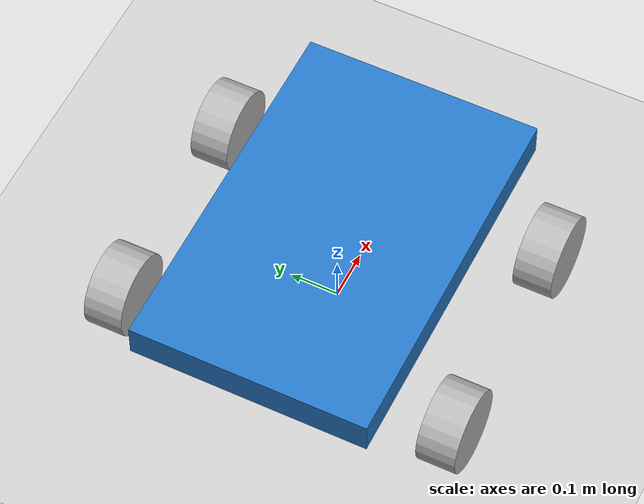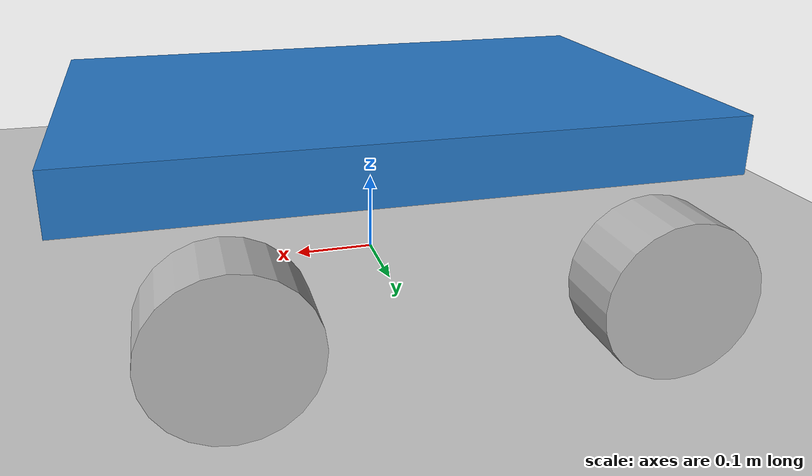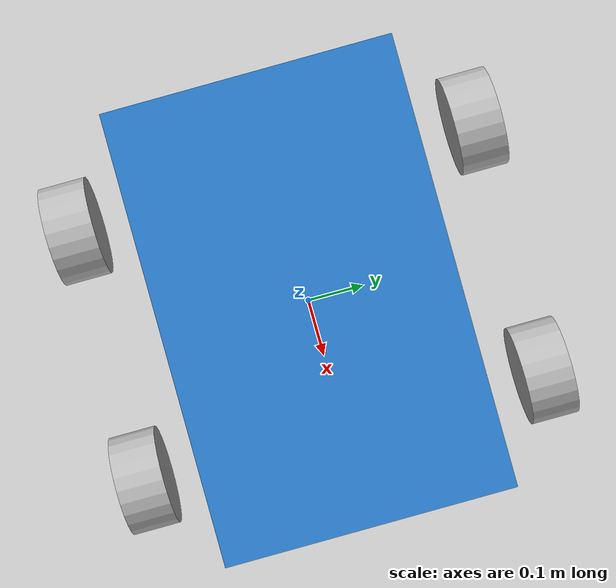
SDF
<?xml version="1.0" ?>
<sdf version="1.10">
  <world name="chassis_strength_bench">
    <physics name="deterministic_1ms" type="ignored">
      <max_step_size>0.001</max_step_size>
      <real_time_factor>1.0</real_time_factor>
    </physics>
    <gravity>0 0 -9.80665</gravity>

    <plugin filename="gz-sim-physics-system" name="gz::sim::systems::Physics"/>
    <plugin filename="gz-sim-user-commands-system" name="gz::sim::systems::UserCommands"/>
    <plugin filename="gz-sim-scene-broadcaster-system" name="gz::sim::systems::SceneBroadcaster"/>
    <plugin filename="gz-sim-forcetorque-system" name="gz::sim::systems::ForceTorque"/>

    <light type="directional" name="sun">
      <cast_shadows>true</cast_shadows>
      <pose>0 0 10 0 0 0</pose>
      <direction>-0.5 0.1 -0.9</direction>
    </light>

    <model name="ground_plane">
      <static>true</static>
      <link name="link">
        <collision name="collision">
          <geometry><plane><normal>0 0 1</normal><size>20 20</size></plane></geometry>
          <surface><friction><ode><mu>0.9</mu><mu2>0.9</mu2></ode></friction></surface>
        </collision>
        <visual name="visual">
          <geometry><plane><normal>0 0 1</normal><size>20 20</size></plane></geometry>
        </visual>
      </link>
    </model>

    <model name="test_chassis">
      <pose>0 0 0.19 0 0 0</pose>
      <link name="base_link">
        <inertial>
          <mass>10.0</mass>
          <inertia>
            <ixx>0.45</ixx><iyy>0.55</iyy><izz>0.80</izz>
            <ixy>0</ixy><ixz>0</ixz><iyz>0</iyz>
          </inertia>
        </inertial>
        <collision name="base_collision">
          <geometry><box><size>0.76 0.49 0.07</size></box></geometry>
        </collision>
        <visual name="base_visual">
          <geometry><box><size>0.76 0.49 0.07</size></box></geometry>
          <material><diffuse>0.15 0.47 0.78 1</diffuse></material>
        </visual>
      </link>

      <!-- Four identical D170 x W80 wheel envelopes at X=+/-220, Y=+/-350 mm. -->
      <link name="front_left_wheel"><pose>0.22 0.35 -0.105 1.570796 0 0</pose>
        <inertial><mass>0.7</mass><inertia><ixx>0.0015</ixx><iyy>0.0015</iyy><izz>0.0025</izz><ixy>0</ixy><ixz>0</ixz><iyz>0</iyz></inertia></inertial>
        <collision name="collision"><geometry><cylinder><radius>0.085</radius><length>0.08</length></cylinder></geometry><surface><friction><ode><mu>0.9</mu><mu2>0.9</mu2></ode></friction></surface></collision>
        <visual name="visual"><geometry><cylinder><radius>0.085</radius><length>0.08</length></cylinder></geometry></visual>
      </link>
      <link name="rear_left_wheel"><pose>-0.22 0.35 -0.105 1.570796 0 0</pose>
        <inertial><mass>0.7</mass><inertia><ixx>0.0015</ixx><iyy>0.0015</iyy><izz>0.0025</izz><ixy>0</ixy><ixz>0</ixz><iyz>0</iyz></inertia></inertial>
        <collision name="collision"><geometry><cylinder><radius>0.085</radius><length>0.08</length></cylinder></geometry><surface><friction><ode><mu>0.9</mu><mu2>0.9</mu2></ode></friction></surface></collision>
        <visual name="visual"><geometry><cylinder><radius>0.085</radius><length>0.08</length></cylinder></geometry></visual>
      </link>
      <link name="front_right_wheel"><pose>0.22 -0.35 -0.105 1.570796 0 0</pose>
        <inertial><mass>0.7</mass><inertia><ixx>0.0015</ixx><iyy>0.0015</iyy><izz>0.0025</izz><ixy>0</ixy><ixz>0</ixz><iyz>0</iyz></inertia></inertial>
        <collision name="collision"><geometry><cylinder><radius>0.085</radius><length>0.08</length></cylinder></geometry><surface><friction><ode><mu>0.9</mu><mu2>0.9</mu2></ode></friction></surface></collision>
        <visual name="visual"><geometry><cylinder><radius>0.085</radius><length>0.08</length></cylinder></geometry></visual>
      </link>
      <link name="rear_right_wheel"><pose>-0.22 -0.35 -0.105 1.570796 0 0</pose>
        <inertial><mass>0.7</mass><inertia><ixx>0.0015</ixx><iyy>0.0015</iyy><izz>0.0025</izz><ixy>0</ixy><ixz>0</ixz><iyz>0</iyz></inertia></inertial>
        <collision name="collision"><geometry><cylinder><radius>0.085</radius><length>0.08</length></cylinder></geometry><surface><friction><ode><mu>0.9</mu><mu2>0.9</mu2></ode></friction></surface></collision>
        <visual name="visual"><geometry><cylinder><radius>0.085</radius><length>0.08</length></cylinder></geometry></visual>
      </link>

      <joint name="front_left_joint" type="revolute"><parent>base_link</parent><child>front_left_wheel</child><axis><xyz>0 1 0</xyz><limit><effort>3.73</effort><velocity>13</velocity></limit></axis><sensor name="wrench" type="force_torque"><always_on>true</always_on><update_rate>500</update_rate><force_torque><frame>child</frame><measure_direction>child_to_parent</measure_direction></force_torque></sensor></joint>
      <joint name="rear_left_joint" type="revolute"><parent>base_link</parent><child>rear_left_wheel</child><axis><xyz>0 1 0</xyz><limit><effort>3.73</effort><velocity>13</velocity></limit></axis><sensor name="wrench" type="force_torque"><always_on>true</always_on><update_rate>500</update_rate><force_torque><frame>child</frame><measure_direction>child_to_parent</measure_direction></force_torque></sensor></joint>
      <joint name="front_right_joint" type="revolute"><parent>base_link</parent><child>front_right_wheel</child><axis><xyz>0 1 0</xyz><limit><effort>3.73</effort><velocity>13</velocity></limit></axis><sensor name="wrench" type="force_torque"><always_on>true</always_on><update_rate>500</update_rate><force_torque><frame>child</frame><measure_direction>child_to_parent</measure_direction></force_torque></sensor></joint>
      <joint name="rear_right_joint" type="revolute"><parent>base_link</parent><child>rear_right_wheel</child><axis><xyz>0 1 0</xyz><limit><effort>3.73</effort><velocity>13</velocity></limit></axis><sensor name="wrench" type="force_torque"><always_on>true</always_on><update_rate>500</update_rate><force_torque><frame>child</frame><measure_direction>child_to_parent</measure_direction></force_torque></sensor></joint>

      <plugin filename="gz-sim-diff-drive-system" name="gz::sim::systems::DiffDrive">
        <left_joint>front_left_joint</left_joint><left_joint>rear_left_joint</left_joint>
        <right_joint>front_right_joint</right_joint><right_joint>rear_right_joint</right_joint>
        <wheel_separation>0.70</wheel_separation><wheel_radius>0.085</wheel_radius>
        <topic>/chassis_strength_bench/cmd_vel</topic>
        <max_linear_acceleration>2.0</max_linear_acceleration>
        <max_angular_acceleration>4.0</max_angular_acceleration>
        <odom_publish_frequency>100</odom_publish_frequency>
      </plugin>
    </model>
  </world>
</sdf>
